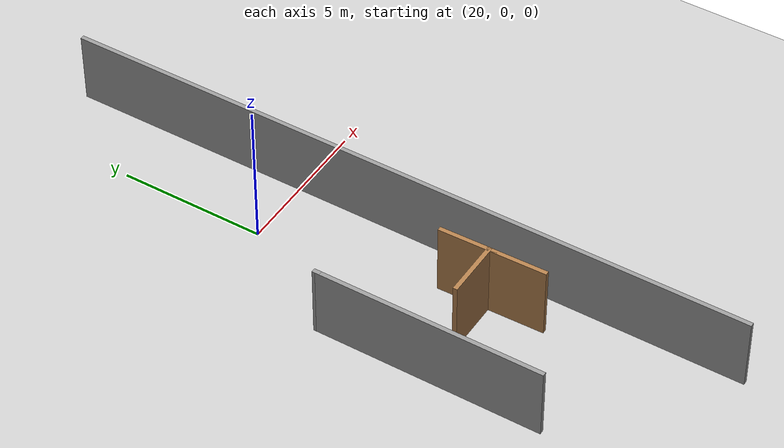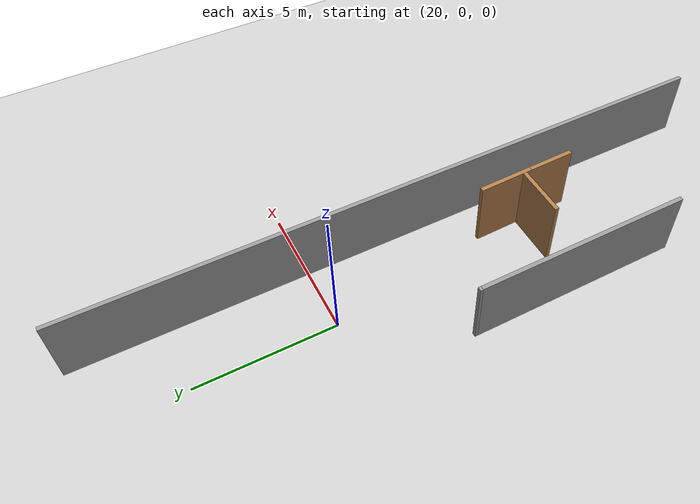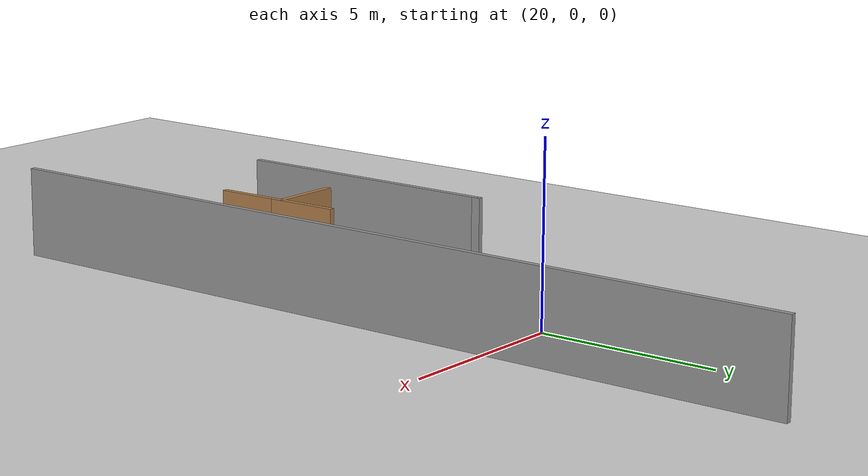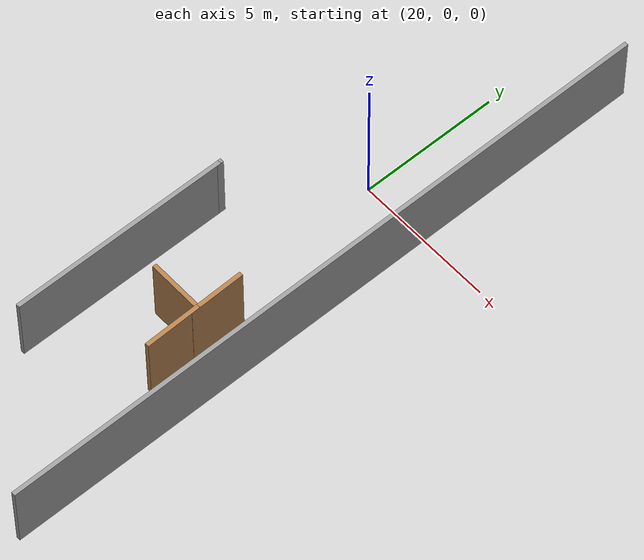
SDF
<sdf version="1.6">
 <world name="default">
  <model name="ground_plane">
   <static>1</static>
   <link name="link">
    <collision name="collision">
     <geometry><plane><normal>0 0 1</normal><size>100 100</size></plane></geometry>
     <surface><friction><ode><mu>100</mu><mu2>50</mu2></ode></friction></surface>
    </collision>
    <visual name="visual">
     <cast_shadows>0</cast_shadows>
     <geometry><plane><normal>0 0 1</normal><size>100 100</size></plane></geometry>
     <material>
      <script><uri>file://media/materials/scripts/gazebo.material</uri><name>Gazebo/Grey</name></script>
     </material>
    </visual>
   </link>
  </model>
  <model name="rbcp_final4">
   <link name="Wall_47">
    <pose>17.5 0 2.5 0 0 -1.5708</pose>
    <visual name="Wall_47_Visual">
     <pose>0 0 1.25 0 -0 0</pose>
     <geometry><box><size>24 0.15 2.5</size></box></geometry>
     <material>
      <script><uri>file://media/materials/scripts/gazebo.material</uri><name>Gazebo/Grey</name></script>
      <ambient>1 1 1 1</ambient>
      <diffuse>0.7 0.7 0.7 1</diffuse>
      <specular>0.01 0.01 0.01 1</specular>
      <emissive>0 0 0 1</emissive>
     </material>
    </visual>
    <collision name="Wall_47_Collision">
     <pose>0 0 1.25 0 -0 0</pose>
     <geometry><box><size>24 0.15 2.5</size></box></geometry>
     <surface>
      <friction>
       <ode><mu>1</mu><mu2>1</mu2><fdir1>0 0 0</fdir1><slip1>0</slip1><slip2>0</slip2></ode>
       <torsional>
        <coefficient>1</coefficient>
        <patch_radius>0</patch_radius>
        <surface_radius>0</surface_radius>
        <use_patch_radius>1</use_patch_radius>
        <ode><slip>0</slip></ode>
       </torsional>
      </friction>
      <bounce><restitution_coefficient>0</restitution_coefficient><threshold>1e+06</threshold></bounce>
      <contact>
       <collide_without_contact>0</collide_without_contact>
       <collide_without_contact_bitmask>1</collide_without_contact_bitmask>
       <collide_bitmask>1</collide_bitmask>
       <ode>
        <soft_cfm>0</soft_cfm>
        <soft_erp>0.2</soft_erp>
        <kp>1e+13</kp>
        <kd>1</kd>
        <max_vel>0.01</max_vel>
        <min_depth>0</min_depth>
       </ode>
       <bullet>
        <split_impulse>1</split_impulse>
        <split_impulse_penetration_threshold>-0.01</split_impulse_penetration_threshold>
        <soft_cfm>0</soft_cfm>
        <soft_erp>0.2</soft_erp>
        <kp>1e+13</kp>
        <kd>1</kd>
       </bullet>
      </contact>
     </surface>
    </collision>
   </link>
   <link name="Wall_58">
    <pose>12.6467 -3.99813 2.5 0 -0 1.5708</pose>
    <visual name="Wall_58_Visual">
     <pose>0 0 1.25 0 -0 0</pose>
     <geometry><box><size>7.75 0.15 2.5</size></box></geometry>
     <material>
      <script><uri>file://media/materials/scripts/gazebo.material</uri><name>Gazebo/Grey</name></script>
      <ambient>1 1 1 1</ambient>
      <diffuse>0.7 0.7 0.7 1</diffuse>
      <specular>0.01 0.01 0.01 1</specular>
      <emissive>0 0 0 1</emissive>
     </material>
    </visual>
    <collision name="Wall_58_Collision">
     <pose>0 0 1.25 0 -0 0</pose>
     <geometry><box><size>7.75 0.15 2.5</size></box></geometry>
     <surface>
      <friction>
       <ode><mu>1</mu><mu2>1</mu2><fdir1>0 0 0</fdir1><slip1>0</slip1><slip2>0</slip2></ode>
       <torsional>
        <coefficient>1</coefficient>
        <patch_radius>0</patch_radius>
        <surface_radius>0</surface_radius>
        <use_patch_radius>1</use_patch_radius>
        <ode><slip>0</slip></ode>
       </torsional>
      </friction>
      <bounce><restitution_coefficient>0</restitution_coefficient><threshold>1e+06</threshold></bounce>
      <contact>
       <collide_without_contact>0</collide_without_contact>
       <collide_without_contact_bitmask>1</collide_without_contact_bitmask>
       <collide_bitmask>1</collide_bitmask>
       <ode>
        <soft_cfm>0</soft_cfm>
        <soft_erp>0.2</soft_erp>
        <kp>1e+13</kp>
        <kd>1</kd>
        <max_vel>0.01</max_vel>
        <min_depth>0</min_depth>
       </ode>
       <bullet>
        <split_impulse>1</split_impulse>
        <split_impulse_penetration_threshold>-0.01</split_impulse_penetration_threshold>
        <soft_cfm>0</soft_cfm>
        <soft_erp>0.2</soft_erp>
        <kp>1e+13</kp>
        <kd>1</kd>
       </bullet>
      </contact>
     </surface>
    </collision>
   </link>
   <link name="Wall_59">
    <pose>12.6467 -0.148133 2.5 0 -0 1.5708</pose>
    <visual name="Wall_59_Visual">
     <pose>0 0 1.25 0 -0 0</pose>
     <geometry><box><size>0.25 0.15 2.5</size></box></geometry>
     <material>
      <script><uri>file://media/materials/scripts/gazebo.material</uri><name>Gazebo/Grey</name></script>
      <ambient>1 1 1 1</ambient>
      <diffuse>0.7 0.7 0.7 1</diffuse>
      <specular>0.01 0.01 0.01 1</specular>
      <emissive>0 0 0 1</emissive>
     </material>
    </visual>
    <collision name="Wall_59_Collision">
     <pose>0 0 1.25 0 -0 0</pose>
     <geometry><box><size>0.25 0.15 2.5</size></box></geometry>
     <surface>
      <friction>
       <ode><mu>1</mu><mu2>1</mu2><fdir1>0 0 0</fdir1><slip1>0</slip1><slip2>0</slip2></ode>
       <torsional>
        <coefficient>1</coefficient>
        <patch_radius>0</patch_radius>
        <surface_radius>0</surface_radius>
        <use_patch_radius>1</use_patch_radius>
        <ode><slip>0</slip></ode>
       </torsional>
      </friction>
      <bounce><restitution_coefficient>0</restitution_coefficient><threshold>1e+06</threshold></bounce>
      <contact>
       <collide_without_contact>0</collide_without_contact>
       <collide_without_contact_bitmask>1</collide_without_contact_bitmask>
       <collide_bitmask>1</collide_bitmask>
       <ode>
        <soft_cfm>0</soft_cfm>
        <soft_erp>0.2</soft_erp>
        <kp>1e+13</kp>
        <kd>1</kd>
        <max_vel>0.01</max_vel>
        <min_depth>0</min_depth>
       </ode>
       <bullet>
        <split_impulse>1</split_impulse>
        <split_impulse_penetration_threshold>-0.01</split_impulse_penetration_threshold>
        <soft_cfm>0</soft_cfm>
        <soft_erp>0.2</soft_erp>
        <kp>1e+13</kp>
        <kd>1</kd>
       </bullet>
      </contact>
     </surface>
    </collision>
   </link>
   <static>1</static>
   <pose>4.93057 -3.68418 -2.5 0 -0 0</pose>
  </model>
  <model name="tr_maze_lay_1_clone_5_clone_14">
   <pose>21.0852 -8.62541 0 0 0 -1.549</pose>
   <link name="Wall_21">
    <collision name="Wall_21_Collision">
     <geometry><box><size>2 0.15 2.5</size></box></geometry>
     <pose>0 0 1.25 0 -0 0</pose>
    </collision>
    <visual name="Wall_21_Visual">
     <pose>0 0 1.25 0 -0 0</pose>
     <geometry><box><size>2 0.15 2.5</size></box></geometry>
     <material>
      <script><uri>file://media/materials/scripts/gazebo.material</uri><name>Gazebo/Wood</name></script>
      <ambient>1 1 1 1</ambient>
     </material>
    </visual>
    <pose>0 0 0 0 -0 3.14159</pose>
   </link>
   <static>1</static>
  </model>
  <model name="tr_maze_lay_1_clone_5_clone_15">
   <pose>21.0529 -6.93994 0 0 0 -1.549</pose>
   <link name="Wall_21">
    <collision name="Wall_21_Collision">
     <geometry><box><size>2 0.15 2.5</size></box></geometry>
     <pose>0 0 1.25 0 -0 0</pose>
    </collision>
    <visual name="Wall_21_Visual">
     <pose>0 0 1.25 0 -0 0</pose>
     <geometry><box><size>2 0.15 2.5</size></box></geometry>
     <material>
      <script><uri>file://media/materials/scripts/gazebo.material</uri><name>Gazebo/Wood</name></script>
      <ambient>1 1 1 1</ambient>
     </material>
    </visual>
    <pose>0 0 0 0 -0 3.14159</pose>
   </link>
   <static>1</static>
  </model>
  <model name="tr_maze_lay_1_clone_7_clone">
   <pose>20.1209 -7.65318 0 0 -0 0</pose>
   <link name="Wall_21">
    <collision name="Wall_21_Collision">
     <geometry><box><size>2 0.15 2.5</size></box></geometry>
     <pose>0 0 1.25 0 -0 0</pose>
    </collision>
    <visual name="Wall_21_Visual">
     <pose>0 0 1.25 0 -0 0</pose>
     <geometry><box><size>2 0.15 2.5</size></box></geometry>
     <material>
      <script><uri>file://media/materials/scripts/gazebo.material</uri><name>Gazebo/Wood</name></script>
      <ambient>1 1 1 1</ambient>
     </material>
    </visual>
    <pose>0 0 0 0 -0 3.14159</pose>
   </link>
   <static>1</static>
  </model>
 </world>
</sdf>
